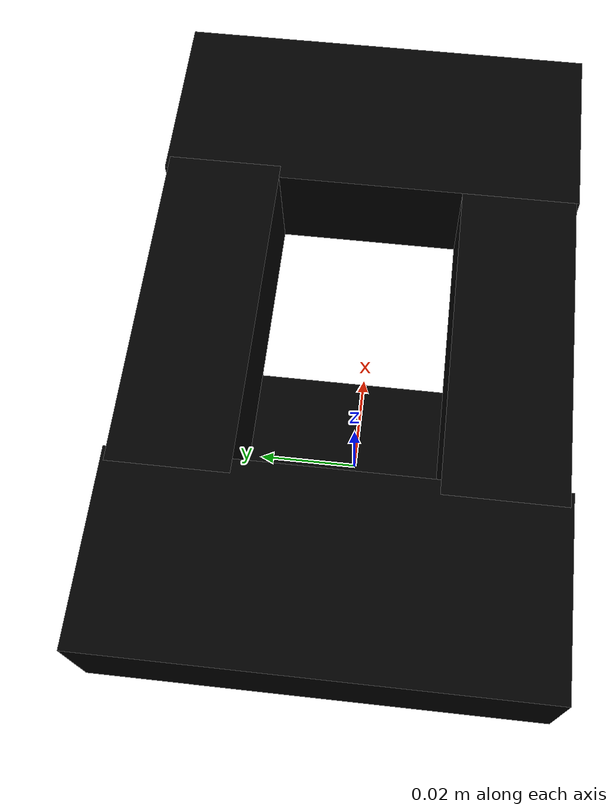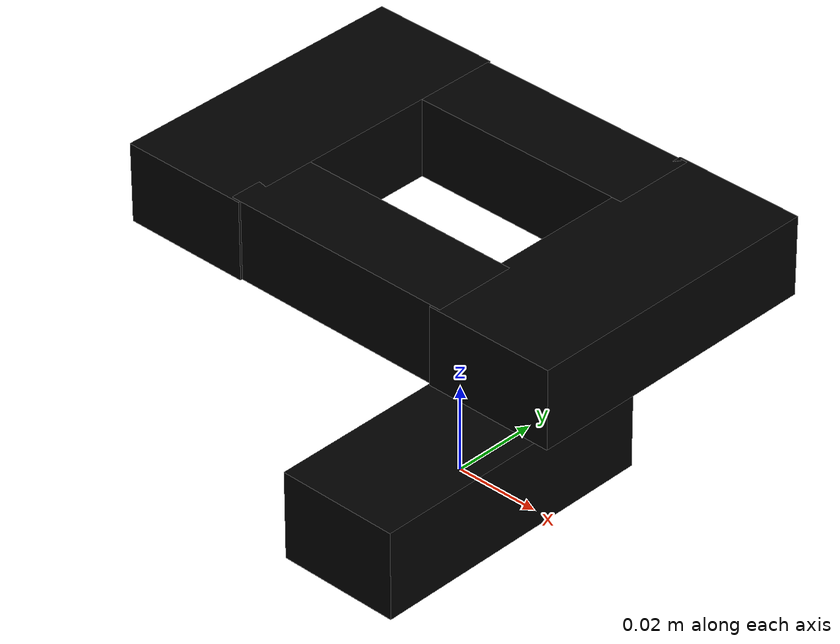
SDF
<?xml version="1.0"?>
<sdf version="1.7">
<world name="w">
<model name="big_fixed_puzzle">
<link name="bin_base">
	<inertial>
		<mass>1.0</mass>
		<inertia>
			<ixx>1.0</ixx><ixy>0.0</ixy><ixz>0</ixz>
			<iyy>1.0</iyy><iyz>0.0</iyz><izz>1.0</izz>
		</inertia>
	</inertial>
	<visual name="b1">
		<pose>0.0 0.0 0.0 0.0 0.0 0.0</pose>
		<geometry>
			<box><size>0.028999999999999998 0.07 0.021</size></box>
		</geometry>
                <material>
                    <diffuse>0 0 0 1</diffuse>
                </material>
        </visual>
	<collision name="b1">
		<pose>0.0 0.0 0.0 0.0 0.0 0.0</pose>
		<geometry>
			<box><size>0.028999999999999998 0.07 0.021</size></box>
                </geometry>
            <drake:proximity_properties>
                <drake:mu_dynamic>1</drake:mu_dynamic>
                <drake:mu_static>1</drake:mu_static>
                <drake:rigid_hydroelastic/>
                <drake:mesh_resolution_hint>0.00001</drake:mesh_resolution_hint>
                <drake:hunt_crossley_dissipation>0.5</drake:hunt_crossley_dissipation>
                <drake:relaxation_time>0.0001</drake:relaxation_time>
            </drake:proximity_properties>
	</collision>
	<visual name="b2">
		<pose>0.0 0.025 0.06 0.0 0.0 0.0</pose>
		<geometry>
			<box><size>0.055 0.019000000000000003 0.018</size></box>
		</geometry>
                <material>
                    <diffuse>0 0 0 1</diffuse>
                </material>
        </visual>
	<collision name="b2">
		<pose>0.0 0.025 0.06 0.0 0.0 0.0</pose>
		<geometry>
			<box><size>0.055 0.019000000000000003 0.018</size></box>
                </geometry>
            <drake:proximity_properties>
                <drake:mu_dynamic>1</drake:mu_dynamic>
                <drake:mu_static>1</drake:mu_static>
                <drake:rigid_hydroelastic/>
                <drake:mesh_resolution_hint>0.00001</drake:mesh_resolution_hint>
                <drake:hunt_crossley_dissipation>0.5</drake:hunt_crossley_dissipation>
                <drake:relaxation_time>0.0001</drake:relaxation_time>
            </drake:proximity_properties>
	</collision>
	<visual name="b3">
		<pose>0.04025 0.0 0.06 0.0 0.0 0.0</pose>
		<geometry>
			<box><size>0.03 0.07 0.018</size></box>
		</geometry>
                <material>
                    <diffuse>0 0 0 1</diffuse>
                </material>
	</visual>
	<collision name="b3">
		<pose>0.04025 0.0 0.06 0.0 0.0 0.0</pose>
		<geometry>
			<box><size>0.03 0.07 0.018</size></box>
		</geometry>
	    <drake:proximity_properties>
                <drake:mu_dynamic>1</drake:mu_dynamic>
                <drake:mu_static>1</drake:mu_static>
                <drake:rigid_hydroelastic/>
                <drake:mesh_resolution_hint>0.00001</drake:mesh_resolution_hint>
                <drake:hunt_crossley_dissipation>0.5</drake:hunt_crossley_dissipation>
                <drake:relaxation_time>0.0001</drake:relaxation_time>
            </drake:proximity_properties>
        </collision>
	<visual name="b4">
		<pose>-0.04025 0.0 0.06 0.0 0.0 0.0</pose>
		<geometry>
			<box><size>0.03 0.07 0.018</size></box>
                </geometry>
                <material>
                    <diffuse>0 0 0 1</diffuse>
                </material>

	</visual>
	<collision name="b4">
		<pose>-0.04025 0.0 0.06 0.0 0.0 0.0</pose>
		<geometry>
			<box><size>0.03 0.07 0.018</size></box>
		</geometry>
            <drake:proximity_properties>
                <drake:mu_dynamic>1</drake:mu_dynamic>
                <drake:mu_static>1</drake:mu_static>
                <drake:rigid_hydroelastic/>
                <drake:mesh_resolution_hint>0.00001</drake:mesh_resolution_hint>
                <drake:hunt_crossley_dissipation>0.5</drake:hunt_crossley_dissipation>
                <drake:relaxation_time>0.0001</drake:relaxation_time>
            </drake:proximity_properties>
        </collision>
	<visual name="b5">
		<pose>0.0 -0.025 0.06 0.0 0.0 0.0</pose>
		<geometry>
			<box><size>0.055 0.019000000000000003 0.018</size></box>
                </geometry>
                <material>
                    <diffuse>0 0 0 1</diffuse>
                </material>
	</visual>
	<collision name="b5">
		<pose>0.0 -0.025 0.06 0.0 0.0 0.0</pose>
		<geometry>
			<box><size>0.055 0.019000000000000003 0.018</size></box>
		</geometry>
            <drake:proximity_properties>
                <drake:mu_dynamic>1</drake:mu_dynamic>
                <drake:mu_static>1</drake:mu_static>
                <drake:rigid_hydroelastic/>
                <drake:mesh_resolution_hint>0.00001</drake:mesh_resolution_hint>
                <drake:hunt_crossley_dissipation>0.5</drake:hunt_crossley_dissipation>
                <drake:relaxation_time>0.0001</drake:relaxation_time>
            </drake:proximity_properties>
	</collision>
</link>
</model>
</world>
</sdf>
